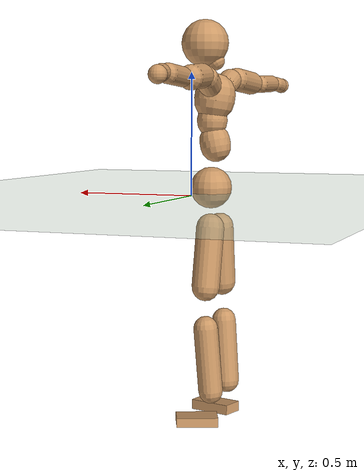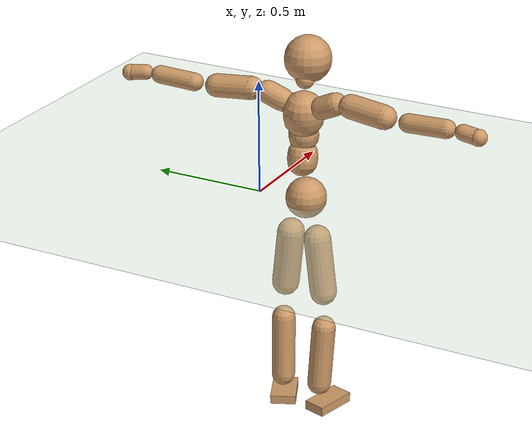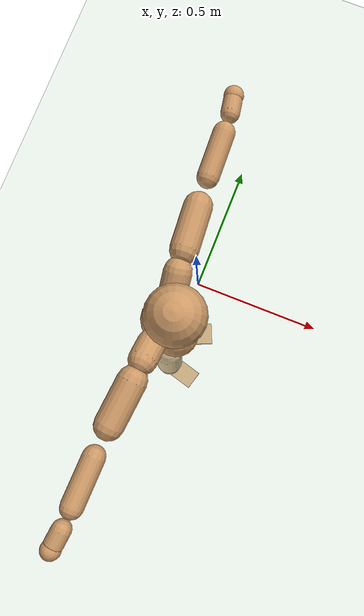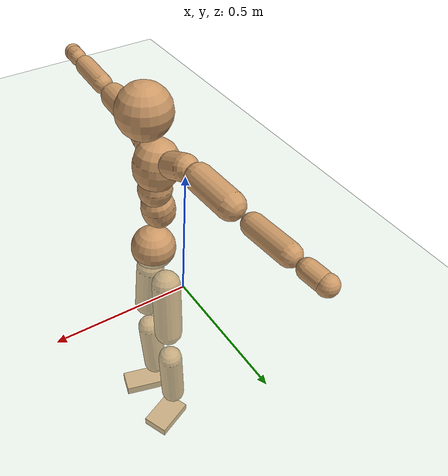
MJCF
<mujoco model="humanoid">
  <compiler coordinate="local"/>
  <default>
    <joint damping="0.0" armature="0.01" stiffness="0.0" limited="true"/>
    <geom conaffinity="1" condim="3" contype="7" margin="0.001" rgba="0.8 0.6 .4 1"/>
  </default>
  <asset>
    <texture type="skybox" builtin="gradient" rgb1=".4 .5 .6" rgb2="0 0 0" width="100" height="100"/>
    <texture builtin="flat" height="1278" mark="cross" markrgb="1 1 1" name="texgeom" random="0.01" rgb1="0.8 0.6 0.4" rgb2="0.8 0.6 0.4" type="cube" width="127"/>
    <texture builtin="checker" height="100" name="texplane" rgb1="0 0 0" rgb2="0.8 0.8 0.8" type="2d" width="100"/>
    <material name="MatPlane" reflectance="0.5" shininess="1" specular="1" texrepeat="60 60" texture="texplane"/>
    <material name="geom" texture="texgeom" texuniform="true"/>
  </asset>
  <worldbody>
    <light cutoff="100" diffuse="1 1 1" dir="-0 0 -1.3" directional="true" exponent="1" pos="0 0 1.3" specular=".1 .1 .1"/>
    <geom conaffinity="1" condim="3" name="floor" pos="0 0 0" rgba="0.8 0.9 0.8 1" size="100 100 .2" type="plane" material="MatPlane"/>
    <body name="Pelvis" pos="-0.0045 -0.2252 0.0207">
      <freejoint name="Pelvis"/>
      <geom type="sphere" contype="1" conaffinity="1" density="500" size="0.0880" pos="0.0000 0.0000 0.0000" name="Pelvis"/>
      <body name="L_Hip" pos="-0.0214 0.0524 -0.0802">
        <joint name="L_Hip_x" type="hinge" pos="0 0 0" axis="1 0 0" stiffness="800" damping="80" armature="0.02" range="-180.0000 180.0000"/>
        <joint name="L_Hip_y" type="hinge" pos="0 0 0" axis="0 1 0" stiffness="800" damping="80" armature="0.02" range="-180.0000 180.0000"/>
        <joint name="L_Hip_z" type="hinge" pos="0 0 0" axis="0 0 1" stiffness="800" damping="80" armature="0.02" range="-180.0000 180.0000"/>
        <geom type="capsule" contype="1" conaffinity="1" density="500" fromto="0.0030 0.0104 -0.0835 0.0119 0.0415 -0.3341" size="0.0587" name="L_Hip"/>
        <body name="L_Knee" pos="0.0148 0.0519 -0.4177">
          <joint name="L_Knee_x" type="hinge" pos="0 0 0" axis="1 0 0" stiffness="800" damping="80" armature="0.02" range="-180.0000 180.0000"/>
          <joint name="L_Knee_y" type="hinge" pos="0 0 0" axis="0 1 0" stiffness="800" damping="80" armature="0.02" range="-180.0000 180.0000"/>
          <joint name="L_Knee_z" type="hinge" pos="0 0 0" axis="0 0 1" stiffness="800" damping="80" armature="0.02" range="-180.0000 180.0000"/>
          <geom type="capsule" contype="1" conaffinity="1" density="500" fromto="-0.0066 -0.0025 -0.0903 -0.0265 -0.0100 -0.3613" size="0.0514" name="L_Knee"/>
          <body name="L_Ankle" pos="-0.0332 -0.0124 -0.4517">
            <joint name="L_Ankle_x" type="hinge" pos="0 0 0" axis="1 0 0" stiffness="800" damping="80" armature="0.02" range="-180.0000 180.0000"/>
            <joint name="L_Ankle_y" type="hinge" pos="0 0 0" axis="0 1 0" stiffness="800" damping="80" armature="0.02" range="-180.0000 180.0000"/>
            <joint name="L_Ankle_z" type="hinge" pos="0 0 0" axis="0 0 1" stiffness="800" damping="80" armature="0.02" range="-180.0000 180.0000"/>
            <geom type="box" contype="1" conaffinity="1" density="500" pos="0.0602 0.0259 -0.0318" size="0.0872 0.056 0.0195" quat="0.9794 0.0000 0.0000 0.2020" name="L_Ankle"/>
            <body name="L_Toe" pos="0.1204 0.0519 -0.0635">
              <joint name="L_Toe_x" type="hinge" pos="0 0 0" axis="1 0 0" stiffness="500" damping="50" armature="0.02" range="-180.0000 180.0000"/>
              <joint name="L_Toe_y" type="hinge" pos="0 0 0" axis="0 1 0" stiffness="500" damping="50" armature="0.02" range="-180.0000 180.0000"/>
              <joint name="L_Toe_z" type="hinge" pos="0 0 0" axis="0 0 1" stiffness="500" damping="50" armature="0.02" range="-180.0000 180.0000"/>
              <geom type="box" contype="1" conaffinity="1" density="500" pos="0.0000 0.0000 0.0333" size="0.001 0.0026 0.0011" quat="0.9786 0.0000 0.0000 0.2058" name="L_Toe"/>
            </body>
          </body>
        </body>
      </body>
      <body name="R_Hip" pos="-0.018 -0.0531 -0.0884">
        <joint name="R_Hip_x" type="hinge" pos="0 0 0" axis="1 0 0" stiffness="800" damping="80" armature="0.02" range="-180.0000 180.0000"/>
        <joint name="R_Hip_y" type="hinge" pos="0 0 0" axis="0 1 0" stiffness="800" damping="80" armature="0.02" range="-180.0000 180.0000"/>
        <joint name="R_Hip_z" type="hinge" pos="0 0 0" axis="0 0 1" stiffness="800" damping="80" armature="0.02" range="-180.0000 180.0000"/>
        <geom type="capsule" contype="1" conaffinity="1" density="500" fromto="-0.0002 -0.0101 -0.0819 -0.0006 -0.0403 -0.3275" size="0.0577" name="R_Hip"/>
        <body name="R_Knee" pos="-0.0008 -0.0504 -0.4094">
          <joint name="R_Knee_x" type="hinge" pos="0 0 0" axis="1 0 0" stiffness="800" damping="80" armature="0.02" range="-180.0000 180.0000"/>
          <joint name="R_Knee_y" type="hinge" pos="0 0 0" axis="0 1 0" stiffness="800" damping="80" armature="0.02" range="-180.0000 180.0000"/>
          <joint name="R_Knee_z" type="hinge" pos="0 0 0" axis="0 0 1" stiffness="800" damping="80" armature="0.02" range="-180.0000 180.0000"/>
          <geom type="capsule" contype="1" conaffinity="1" density="500" fromto="-0.0063 0.0036 -0.0886 -0.0254 0.0143 -0.3546" size="0.0519" name="R_Knee"/>
          <body name="R_Ankle" pos="-0.0317 0.0179 -0.4432">
            <joint name="R_Ankle_x" type="hinge" pos="0 0 0" axis="1 0 0" stiffness="800" damping="80" armature="0.02" range="-180.0000 180.0000"/>
            <joint name="R_Ankle_y" type="hinge" pos="0 0 0" axis="0 1 0" stiffness="800" damping="80" armature="0.02" range="-180.0000 180.0000"/>
            <joint name="R_Ankle_z" type="hinge" pos="0 0 0" axis="0 0 1" stiffness="800" damping="80" armature="0.02" range="-180.0000 180.0000"/>
            <geom type="box" contype="1" conaffinity="1" density="500" pos="0.0652 -0.0177 -0.0320" size="0.0921 0.0488 0.0212" quat="0.9913 0.0000 0.0000 -0.1319" name="R_Ankle"/>
            <body name="R_Toe" pos="0.1304 -0.0353 -0.0639">
              <joint name="R_Toe_x" type="hinge" pos="0 0 0" axis="1 0 0" stiffness="500" damping="50" armature="0.02" range="-180.0000 180.0000"/>
              <joint name="R_Toe_y" type="hinge" pos="0 0 0" axis="0 1 0" stiffness="500" damping="50" armature="0.02" range="-180.0000 180.0000"/>
              <joint name="R_Toe_z" type="hinge" pos="0 0 0" axis="0 0 1" stiffness="500" damping="50" armature="0.02" range="-180.0000 180.0000"/>
              <geom type="box" contype="1" conaffinity="1" density="500" pos="0.0000 0.0000 0.0327" size="0.0009 0.0024 0.0011" quat="0.9924 0.0000 0.0000 -0.1230" name="R_Toe"/>
            </body>
          </body>
        </body>
      </body>
      <body name="Torso" pos="-0.0334 0.0046 0.1196">
        <joint name="Torso_x" type="hinge" pos="0 0 0" axis="1 0 0" stiffness="1000" damping="100" armature="0.02" range="-180.0000 180.0000"/>
        <joint name="Torso_y" type="hinge" pos="0 0 0" axis="0 1 0" stiffness="1000" damping="100" armature="0.02" range="-180.0000 180.0000"/>
        <joint name="Torso_z" type="hinge" pos="0 0 0" axis="0 0 1" stiffness="1000" damping="100" armature="0.02" range="-180.0000 180.0000"/>
        <geom type="capsule" contype="1" conaffinity="1" density="500" fromto="0.0160 0.0027 0.0826 0.0107 0.0018 0.0551" size="0.064542" name="Torso"/>
        <body name="Spine" pos="0.0266 0.0045 0.1377">
          <joint name="Spine_x" type="hinge" pos="0 0 0" axis="1 0 0" stiffness="1000" damping="100" armature="0.02" range="-180.0000 180.0000"/>
          <joint name="Spine_y" type="hinge" pos="0 0 0" axis="0 1 0" stiffness="1000" damping="100" armature="0.02" range="-180.0000 180.0000"/>
          <joint name="Spine_z" type="hinge" pos="0 0 0" axis="0 0 1" stiffness="1000" damping="100" armature="0.02" range="-180.0000 180.0000"/>
          <geom type="capsule" contype="1" conaffinity="1" density="500" fromto="-0.0004 -0.0008 0.0332 -0.0002 -0.0006 0.0222" size="0.063984" name="Spine"/>
          <body name="Chest" pos="-0.0006 -0.0014 0.0554">
            <joint name="Chest_x" type="hinge" pos="0 0 0" axis="1 0 0" stiffness="1000" damping="100" armature="0.02" range="-180.0000 180.0000"/>
            <joint name="Chest_y" type="hinge" pos="0 0 0" axis="0 1 0" stiffness="1000" damping="100" armature="0.02" range="-180.0000 180.0000"/>
            <joint name="Chest_z" type="hinge" pos="0 0 0" axis="0 0 1" stiffness="1000" damping="100" armature="0.02" range="-180.0000 180.0000"/>
            <geom type="capsule" contype="1" conaffinity="1" density="500" fromto="-0.0117 -0.0045 0.0836 -0.0078 -0.0030 0.0558" size="0.085653" name="Chest"/>
            <body name="Neck" pos="-0.0196 -0.0123 0.2022">
              <joint name="Neck_x" type="hinge" pos="0 0 0" axis="1 0 0" stiffness="500" damping="50" armature="0.02" range="-180.0000 180.0000"/>
              <joint name="Neck_y" type="hinge" pos="0 0 0" axis="0 1 0" stiffness="500" damping="50" armature="0.02" range="-180.0000 180.0000"/>
              <joint name="Neck_z" type="hinge" pos="0 0 0" axis="0 0 1" stiffness="500" damping="50" armature="0.02" range="-180.0000 180.0000"/>
              <geom type="capsule" contype="1" conaffinity="1" density="500" fromto="0.0106 0.0022 0.0188 0.0424 0.0087 0.0752" size="0.039339" name="Neck"/>
              <body name="Head" pos="0.053 0.0108 0.094">
                <joint name="Head_x" type="hinge" pos="0 0 0" axis="1 0 0" stiffness="500" damping="50" armature="0.02" range="-180.0000 180.0000"/>
                <joint name="Head_y" type="hinge" pos="0 0 0" axis="0 1 0" stiffness="500" damping="50" armature="0.02" range="-180.0000 180.0000"/>
                <joint name="Head_z" type="hinge" pos="0 0 0" axis="0 0 1" stiffness="500" damping="50" armature="0.02" range="-180.0000 180.0000"/>
                <geom type="sphere" contype="1" conaffinity="1" density="500" size="0.0997" pos="0.0000 0.0000 0.0000" name="Head"/>
              </body>
            </body>
            <body name="L_Thorax" pos="-0.0171 0.0648 0.1091">
              <joint name="L_Thorax_x" type="hinge" pos="0 0 0" axis="1 0 0" stiffness="500" damping="50" armature="0.02" range="-180.0000 180.0000"/>
              <joint name="L_Thorax_y" type="hinge" pos="0 0 0" axis="0 1 0" stiffness="500" damping="50" armature="0.02" range="-180.0000 180.0000"/>
              <joint name="L_Thorax_z" type="hinge" pos="0 0 0" axis="0 0 1" stiffness="500" damping="50" armature="0.02" range="-180.0000 180.0000"/>
              <geom type="capsule" contype="1" conaffinity="1" density="500" fromto="-0.0026 0.0221 0.0093 -0.0103 0.0883 0.0370" size="0.0487" name="L_Thorax"/>
              <body name="L_Shoulder" pos="-0.0129 0.1104 0.0463">
                <joint name="L_Shoulder_x" type="hinge" pos="0 0 0" axis="1 0 0" stiffness="500" damping="50" armature="0.02" range="-720.0000 720.0000"/>
                <joint name="L_Shoulder_y" type="hinge" pos="0 0 0" axis="0 1 0" stiffness="500" damping="50" armature="0.02" range="-720.0000 720.0000"/>
                <joint name="L_Shoulder_z" type="hinge" pos="0 0 0" axis="0 0 1" stiffness="500" damping="50" armature="0.02" range="-720.0000 720.0000"/>
                <geom type="capsule" contype="1" conaffinity="1" density="500" fromto="-0.0043 0.0522 -0.0037 -0.0172 0.2089 -0.0147" size="0.0501" name="L_Shoulder"/>
                <body name="L_Elbow" pos="-0.0215 0.2611 -0.0184">
                  <joint name="L_Elbow_x" type="hinge" pos="0 0 0" axis="1 0 0" stiffness="500" damping="50" armature="0.02" range="-720.0000 720.0000"/>
                  <joint name="L_Elbow_y" type="hinge" pos="0 0 0" axis="0 1 0" stiffness="500" damping="50" armature="0.02" range="-720.0000 720.0000"/>
                  <joint name="L_Elbow_z" type="hinge" pos="0 0 0" axis="0 0 1" stiffness="500" damping="50" armature="0.02" range="-720.0000 720.0000"/>
                  <geom type="capsule" contype="1" conaffinity="1" density="500" fromto="-0.0019 0.0541 0.0026 -0.0075 0.2164 0.0103" size="0.0389" name="L_Elbow"/>
                  <body name="L_Wrist" pos="-0.0094 0.2705 0.0129">
                    <joint name="L_Wrist_x" type="hinge" pos="0 0 0" axis="1 0 0" stiffness="300" damping="30" armature="0.02" range="-180.0000 180.0000"/>
                    <joint name="L_Wrist_y" type="hinge" pos="0 0 0" axis="0 1 0" stiffness="300" damping="30" armature="0.02" range="-180.0000 180.0000"/>
                    <joint name="L_Wrist_z" type="hinge" pos="0 0 0" axis="0 0 1" stiffness="300" damping="30" armature="0.02" range="-180.0000 180.0000"/>
                    <geom type="capsule" contype="1" conaffinity="1" density="500" fromto="-0.0032 0.0172 -0.0021 -0.0126 0.0686 -0.0084" size="0.0332" name="L_Wrist"/>
                    <body name="L_Hand" pos="-0.0158 0.0858 -0.0105">
                      <joint name="L_Hand_x" type="hinge" pos="0 0 0" axis="1 0 0" stiffness="300" damping="30" armature="0.02" range="-180.0000 180.0000"/>
                      <joint name="L_Hand_y" type="hinge" pos="0 0 0" axis="0 1 0" stiffness="300" damping="30" armature="0.02" range="-180.0000 180.0000"/>
                      <joint name="L_Hand_z" type="hinge" pos="0 0 0" axis="0 0 1" stiffness="300" damping="30" armature="0.02" range="-180.0000 180.0000"/>
                      <geom type="sphere" contype="1" conaffinity="1" density="500" size="0.0350" pos="0.0000 0.0000 0.0000" name="L_Hand"/>
                    </body>
                  </body>
                </body>
              </body>
            </body>
            <body name="R_Thorax" pos="-0.0218 -0.0749 0.1068">
              <joint name="R_Thorax_x" type="hinge" pos="0 0 0" axis="1 0 0" stiffness="500" damping="50" armature="0.02" range="-180.0000 180.0000"/>
              <joint name="R_Thorax_y" type="hinge" pos="0 0 0" axis="0 1 0" stiffness="500" damping="50" armature="0.02" range="-180.0000 180.0000"/>
              <joint name="R_Thorax_z" type="hinge" pos="0 0 0" axis="0 0 1" stiffness="500" damping="50" armature="0.02" range="-180.0000 180.0000"/>
              <geom type="capsule" contype="1" conaffinity="1" density="500" fromto="-0.0008 -0.0203 0.0094 -0.0034 -0.0814 0.0374" size="0.049" name="R_Thorax"/>
              <body name="R_Shoulder" pos="-0.0042 -0.1017 0.0468">
                <joint name="R_Shoulder_x" type="hinge" pos="0 0 0" axis="1 0 0" stiffness="500" damping="50" armature="0.02" range="-720.0000 720.0000"/>
                <joint name="R_Shoulder_y" type="hinge" pos="0 0 0" axis="0 1 0" stiffness="500" damping="50" armature="0.02" range="-720.0000 720.0000"/>
                <joint name="R_Shoulder_z" type="hinge" pos="0 0 0" axis="0 0 1" stiffness="500" damping="50" armature="0.02" range="-720.0000 720.0000"/>
                <geom type="capsule" contype="1" conaffinity="1" density="500" fromto="-0.0055 -0.0525 -0.0041 -0.0219 -0.2102 -0.0165" size="0.0508" name="R_Shoulder"/>
                <body name="R_Elbow" pos="-0.0274 -0.2627 -0.0206">
                  <joint name="R_Elbow_x" type="hinge" pos="0 0 0" axis="1 0 0" stiffness="500" damping="50" armature="0.02" range="-720.0000 720.0000"/>
                  <joint name="R_Elbow_y" type="hinge" pos="0 0 0" axis="0 1 0" stiffness="500" damping="50" armature="0.02" range="-720.0000 720.0000"/>
                  <joint name="R_Elbow_z" type="hinge" pos="0 0 0" axis="0 0 1" stiffness="500" damping="50" armature="0.02" range="-720.0000 720.0000"/>
                  <geom type="capsule" contype="1" conaffinity="1" density="500" fromto="-0.0014 -0.0552 0.0021 -0.0054 -0.2207 0.0084" size="0.0391" name="R_Elbow"/>
                  <body name="R_Wrist" pos="-0.0068 -0.2759 0.0105">
                    <joint name="R_Wrist_x" type="hinge" pos="0 0 0" axis="1 0 0" stiffness="300" damping="30" armature="0.02" range="-180.0000 180.0000"/>
                    <joint name="R_Wrist_y" type="hinge" pos="0 0 0" axis="0 1 0" stiffness="300" damping="30" armature="0.02" range="-180.0000 180.0000"/>
                    <joint name="R_Wrist_z" type="hinge" pos="0 0 0" axis="0 0 1" stiffness="300" damping="30" armature="0.02" range="-180.0000 180.0000"/>
                    <geom type="capsule" contype="1" conaffinity="1" density="500" fromto="-0.0021 -0.0173 -0.0017 -0.0084 -0.0693 -0.0066" size="0.0332" name="R_Wrist"/>
                    <body name="R_Hand" pos="-0.0104 -0.0866 -0.0083">
                      <joint name="R_Hand_x" type="hinge" pos="0 0 0" axis="1 0 0" stiffness="300" damping="30" armature="0.02" range="-180.0000 180.0000"/>
                      <joint name="R_Hand_y" type="hinge" pos="0 0 0" axis="0 1 0" stiffness="300" damping="30" armature="0.02" range="-180.0000 180.0000"/>
                      <joint name="R_Hand_z" type="hinge" pos="0 0 0" axis="0 0 1" stiffness="300" damping="30" armature="0.02" range="-180.0000 180.0000"/>
                      <geom type="sphere" contype="1" conaffinity="1" density="500" size="0.0350" pos="0.0000 0.0000 0.0000" name="R_Hand"/>
                    </body>
                  </body>
                </body>
              </body>
            </body>
          </body>
        </body>
      </body>
    </body>
  </worldbody>
  <actuator>
    <motor name="L_Hip_x" joint="L_Hip_x" gear="500"/>
    <motor name="L_Hip_y" joint="L_Hip_y" gear="500"/>
    <motor name="L_Hip_z" joint="L_Hip_z" gear="500"/>
    <motor name="L_Knee_x" joint="L_Knee_x" gear="500"/>
    <motor name="L_Knee_y" joint="L_Knee_y" gear="500"/>
    <motor name="L_Knee_z" joint="L_Knee_z" gear="500"/>
    <motor name="L_Ankle_x" joint="L_Ankle_x" gear="500"/>
    <motor name="L_Ankle_y" joint="L_Ankle_y" gear="500"/>
    <motor name="L_Ankle_z" joint="L_Ankle_z" gear="500"/>
    <motor name="L_Toe_x" joint="L_Toe_x" gear="500"/>
    <motor name="L_Toe_y" joint="L_Toe_y" gear="500"/>
    <motor name="L_Toe_z" joint="L_Toe_z" gear="500"/>
    <motor name="R_Hip_x" joint="R_Hip_x" gear="500"/>
    <motor name="R_Hip_y" joint="R_Hip_y" gear="500"/>
    <motor name="R_Hip_z" joint="R_Hip_z" gear="500"/>
    <motor name="R_Knee_x" joint="R_Knee_x" gear="500"/>
    <motor name="R_Knee_y" joint="R_Knee_y" gear="500"/>
    <motor name="R_Knee_z" joint="R_Knee_z" gear="500"/>
    <motor name="R_Ankle_x" joint="R_Ankle_x" gear="500"/>
    <motor name="R_Ankle_y" joint="R_Ankle_y" gear="500"/>
    <motor name="R_Ankle_z" joint="R_Ankle_z" gear="500"/>
    <motor name="R_Toe_x" joint="R_Toe_x" gear="500"/>
    <motor name="R_Toe_y" joint="R_Toe_y" gear="500"/>
    <motor name="R_Toe_z" joint="R_Toe_z" gear="500"/>
    <motor name="Torso_x" joint="Torso_x" gear="500"/>
    <motor name="Torso_y" joint="Torso_y" gear="500"/>
    <motor name="Torso_z" joint="Torso_z" gear="500"/>
    <motor name="Spine_x" joint="Spine_x" gear="500"/>
    <motor name="Spine_y" joint="Spine_y" gear="500"/>
    <motor name="Spine_z" joint="Spine_z" gear="500"/>
    <motor name="Chest_x" joint="Chest_x" gear="500"/>
    <motor name="Chest_y" joint="Chest_y" gear="500"/>
    <motor name="Chest_z" joint="Chest_z" gear="500"/>
    <motor name="Neck_x" joint="Neck_x" gear="500"/>
    <motor name="Neck_y" joint="Neck_y" gear="500"/>
    <motor name="Neck_z" joint="Neck_z" gear="500"/>
    <motor name="Head_x" joint="Head_x" gear="500"/>
    <motor name="Head_y" joint="Head_y" gear="500"/>
    <motor name="Head_z" joint="Head_z" gear="500"/>
    <motor name="L_Thorax_x" joint="L_Thorax_x" gear="500"/>
    <motor name="L_Thorax_y" joint="L_Thorax_y" gear="500"/>
    <motor name="L_Thorax_z" joint="L_Thorax_z" gear="500"/>
    <motor name="L_Shoulder_x" joint="L_Shoulder_x" gear="500"/>
    <motor name="L_Shoulder_y" joint="L_Shoulder_y" gear="500"/>
    <motor name="L_Shoulder_z" joint="L_Shoulder_z" gear="500"/>
    <motor name="L_Elbow_x" joint="L_Elbow_x" gear="500"/>
    <motor name="L_Elbow_y" joint="L_Elbow_y" gear="500"/>
    <motor name="L_Elbow_z" joint="L_Elbow_z" gear="500"/>
    <motor name="L_Wrist_x" joint="L_Wrist_x" gear="500"/>
    <motor name="L_Wrist_y" joint="L_Wrist_y" gear="500"/>
    <motor name="L_Wrist_z" joint="L_Wrist_z" gear="500"/>
    <motor name="L_Hand_x" joint="L_Hand_x" gear="500"/>
    <motor name="L_Hand_y" joint="L_Hand_y" gear="500"/>
    <motor name="L_Hand_z" joint="L_Hand_z" gear="500"/>
    <motor name="R_Thorax_x" joint="R_Thorax_x" gear="500"/>
    <motor name="R_Thorax_y" joint="R_Thorax_y" gear="500"/>
    <motor name="R_Thorax_z" joint="R_Thorax_z" gear="500"/>
    <motor name="R_Shoulder_x" joint="R_Shoulder_x" gear="500"/>
    <motor name="R_Shoulder_y" joint="R_Shoulder_y" gear="500"/>
    <motor name="R_Shoulder_z" joint="R_Shoulder_z" gear="500"/>
    <motor name="R_Elbow_x" joint="R_Elbow_x" gear="500"/>
    <motor name="R_Elbow_y" joint="R_Elbow_y" gear="500"/>
    <motor name="R_Elbow_z" joint="R_Elbow_z" gear="500"/>
    <motor name="R_Wrist_x" joint="R_Wrist_x" gear="500"/>
    <motor name="R_Wrist_y" joint="R_Wrist_y" gear="500"/>
    <motor name="R_Wrist_z" joint="R_Wrist_z" gear="500"/>
    <motor name="R_Hand_x" joint="R_Hand_x" gear="500"/>
    <motor name="R_Hand_y" joint="R_Hand_y" gear="500"/>
    <motor name="R_Hand_z" joint="R_Hand_z" gear="500"/>
  </actuator>
  <contact>
    <exclude body1="Torso" body2="Chest"/>
    <exclude body1="Head" body2="Chest"/>
    <exclude body1="R_Knee" body2="R_Toe"/>
    <exclude body1="R_Knee" body2="L_Ankle"/>
    <exclude body1="R_Knee" body2="L_Toe"/>
    <exclude body1="L_Knee" body2="L_Toe"/>
    <exclude body1="L_Knee" body2="R_Ankle"/>
    <exclude body1="L_Knee" body2="R_Toe"/>
    <exclude body1="L_Shoulder" body2="Chest"/>
    <exclude body1="R_Shoulder" body2="Chest"/>
  </contact>
  <sensor/>
  <size njmax="700" nconmax="700"/>
</mujoco>
